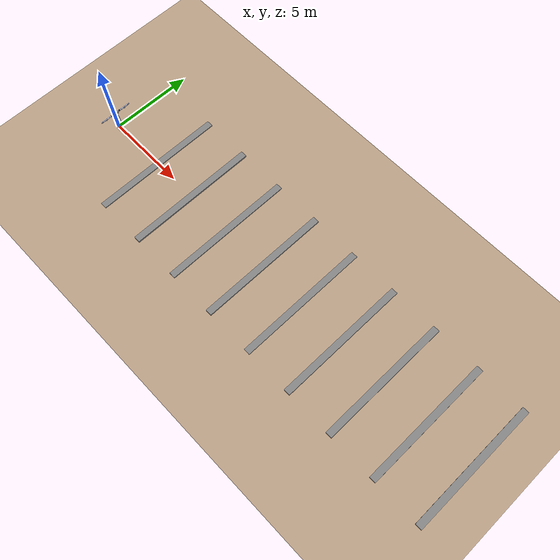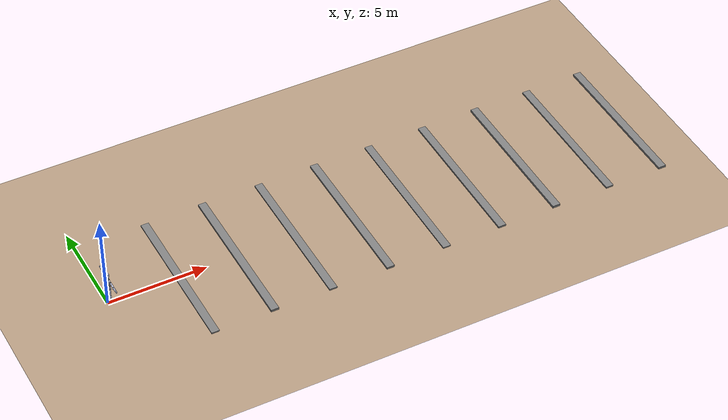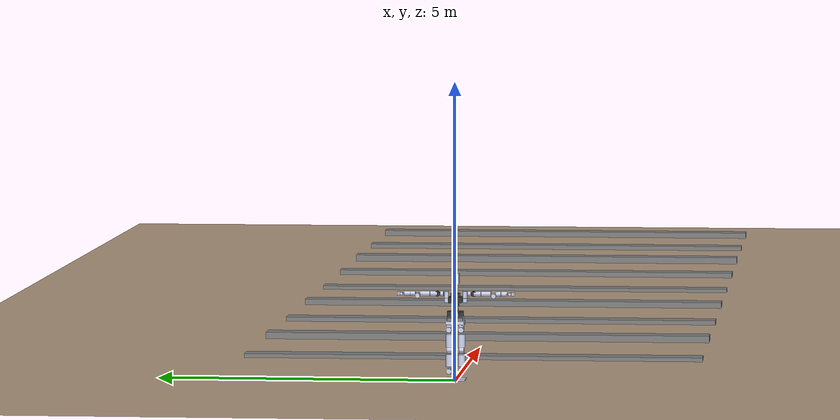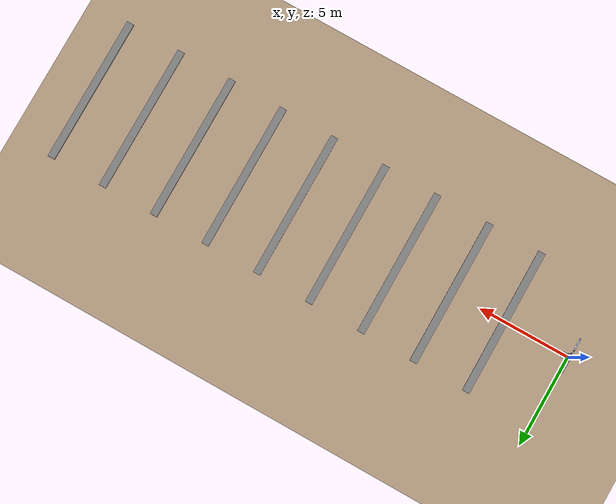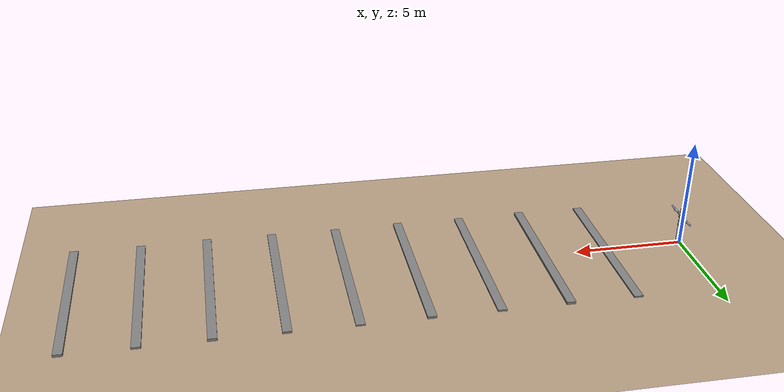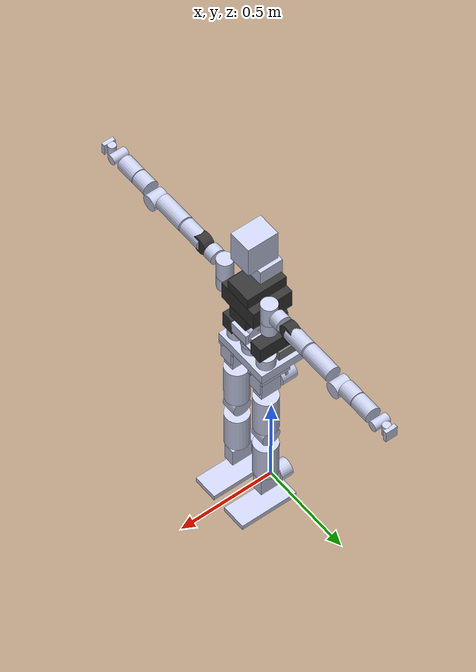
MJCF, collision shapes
<mujoco model="dyros_tocabi_description">

    <compiler angle="radian" meshdir="../meshes/dyros_tocabi/" balanceinertia="true"/>
    <default>
        <motor ctrllimited="true" ctrlrange="-300 300"/>
        <default class="viz">
            <geom contype="0" conaffinity="0" group="1" type="mesh" rgba=".6 .6 .7 1" />
        </default>
        <default class="cls">
            <geom group="2" rgba="0.79216 0.81961 0.93333 0.5"/>
        </default>
        <default class="cls_f">
            <geom group="2" rgba="0.79216 0.81961 0.93333 0.1" friction="1 0.005 0.0001"/>
        </default>
        <default class="FTsensor">
            <site type="cylinder" size="0.005 0.005" group="4" rgba=".1 .1 .9 1"/>
        </default>
        <default class="Leg">
            <joint damping="1" frictionloss="0.1"/>
        </default>
        <default class="Waist">
            <joint damping="1" frictionloss="0.1"/>
        </default>
        <default class="Upper">
            <joint damping="1" frictionloss="0.1"/>
        </default>
    </default>
    <option timestep='0.0005' iterations="50" tolerance="1e-10" solver="Newton" jacobian="dense" cone="elliptic" gravity="0 0 -9.81"/>

    <visual>
        <quality shadowsize="2048" offsamples="16"/>
        <map stiffness="10" znear="0.05"/>
    </visual>

    <asset>
        <mesh name="Pelvis_link" file="Pelvis_link2.STL" scale="0.001 0.001 0.001"/>
        <mesh name="HipRoll_R_link" file="HipRoll_R_link.STL" />
        <mesh name="HipCenter_R_Link" file="HipCenter_R_Link.STL" />
        <mesh name="Thigh_R_Link" file="Thigh_R_Link.STL" />
        <mesh name="Knee_R_Link" file="Knee_R_Link.STL" />
        <mesh name="AnkleCenter_R_Link" file="AnkleCenter_R_Link.STL" />
        <mesh name="AnkleRoll_R_Link" file="AnkleRoll_R_Link.STL" />
        <mesh name="HipRoll_L_Link" file="HipRoll_L_Link.STL" />
        <mesh name="HipCenter_L_Link" file="HipCenter_L_Link.STL" />
        <mesh name="Thigh_L_Link" file="Thigh_L_Link.STL" />
        <mesh name="Knee_L_Link" file="Knee_L_Link.STL" />
        <mesh name="AnkleCenter_L_Link" file="AnkleCenter_L_Link.STL" />
        <mesh name="AnkleRoll_L_Link" file="AnkleRoll_L_Link.STL" />
        <mesh name="waist1" file="waistyaw.STL" scale="0.001 0.001 0.001"/>
        <mesh name="waist2" file="waist2.STL" />
        <mesh name="upperbody" file="upperbody.STL" />
        <mesh name="R_shoulder1" file="R_shoulder1.STL" />
        <mesh name="R_shoulder2" file="R_shoulder2.STL" />
        <mesh name="R_shoulder3" file="R_shoulder3.STL" />
        <mesh name="R_arm" file="R_arm.STL" />
        <mesh name="R_elbow" file="R_elbow.STL" />
        <mesh name="R_forearm" file="R_forearm.STL" />
        <mesh name="R_wrist1" file="R_wrist1.STL" />
        <mesh name="L_shoulder1" file="L_shoulder1.STL" />
        <mesh name="L_shoulder2" file="L_shoulder2.STL" />
        <mesh name="L_shoulder3" file="L_shoulder3.STL" />
        <mesh name="L_arm" file="L_arm.STL" />
        <mesh name="L_elbow" file="L_elbow.STL" />
        <mesh name="L_forearm" file="L_forearm.STL" />
        <mesh name="L_wrist1" file="L_wrist1.STL" />
        <mesh name="neck" file="neck.STL" />
        <mesh name="head" file="head.STL" />
        <mesh name="hand" file="wrist2joint.STL" scale="0.001 0.001 0.001"/>
        <mesh name="Foot_Link" file="Foot_Link.STL"/>

        <!--texture type="skybox" builtin="gradient" width="128" height="128" rgb1="1 1 1" rgb2="0 0 0"/-->
        <texture type="skybox" builtin="gradient" width="128" height="128" rgb1="0.4 0.6 0.8" rgb2="0 0 0"/>
        <texture name="texgeom" type="cube" builtin="flat" mark="cross" width="128" height="128" rgb1="0.6 0.6 0.6" rgb2="0.6 0.6 0.6" markrgb="1 1 1"/>
        <texture name="texplane" type="2d" builtin="checker" rgb1=".4 .4 .4" rgb2=".6 .6 .6" width="512" height="512"/>
        <material name='geom' texture="texgeom" texuniform="true"/>
        <material name='MatPlane' reflectance='0.3' texture="texplane" texrepeat="1 1" texuniform="true"/>
        <material name='MatPlane2' reflectance='0.3' />
    </asset>

    <worldbody>
        <geom name="ground" type="plane" pos="0 0 0" size="30 30 .05" rgba="0.7 0.6 0.5 1" material="MatPlane2" group="3"/>
        <body name="obstacle1" pos="3.6 0.0 0.0" zaxis="0 0 1">
            <geom size="0.2 4.0 0.04" type="box" />
        </body>
        <body name="obstacle2" pos="6.6 0.0 0.0" zaxis="0 0 1">
            <geom size="0.2 4.0 0.09" type="box" />
        </body>
        <body name="obstacle3" pos="9.6 0.0 0.0" zaxis="0 0 1">
            <geom size="0.2 4.0 0.05" type="box" />
        </body>
        <body name="obstacle4" pos="12.6 0.0 0.0" zaxis="0 0 1">
            <geom size="0.2 4.0 0.08" type="box" />
        </body>
        <body name="obstacle5" pos="15.6 0.0 0.0" zaxis="0 0 1">
            <geom size="0.2 4.0 0.04" type="box" />
        </body>
        <body name="obstacle6" pos="18.6 0.0 0.0" zaxis="0 0 1">
            <geom size="0.2 4.0 0.07" type="box" />
        </body>
        <body name="obstacle7" pos="21.6 0.0 0.0" zaxis="0 0 1">
            <geom size="0.2 4.0 0.10" type="box" />
        </body>
        <body name="obstacle8" pos="24.6 0.0 0.0" zaxis="0 0 1">
            <geom size="0.2 4.0 0.06" type="box" />
        </body>
        <body name="obstacle9" pos="27.6 0.0 0.0" zaxis="0 0 1">
            <geom size="0.2 4.0 0.09" type="box" />
        </body>
        <light directional="true" diffuse=".8 .8 .8" pos="0 0 10" dir="0 0 -10"/>
        <light directional="true" diffuse=".5 .5 .5" pos="10 0 0" dir="-10 0 0"/>

        <body name="base_link" pos="0.0 0 0.96" euler="0 0 0">
            <joint name="virtual_joint" type="free" limited='false' frictionloss="0" damping="0" stiffness="0" armature="0"/>
            <inertial pos="0.07809 0 0.03985" mass="12.19525" fullinertia="0.101833182 0.072400662 0.144478157 -0.000070812 -0.003831096 0.000079272" />
            <geom class="viz" pos="0.11 0 0.02" rgba="0.20313 0.20313 0.20313 1" quat="0.5 0.5 0.5 0.5" mesh="Pelvis_link" />
            <geom size="0.045 0.044" pos="0.11 0 0.039" type="cylinder" class="cls" />
            <geom size="0.045 0.055" pos="0.11 0.1025 0.05" type="cylinder" class="cls" />
            <geom size="0.045 0.055" pos="0.11 -0.1025 0.05" type="cylinder" class="cls" />
            <geom size="0.12 0.1525 0.025" pos="0.052 0 0.02" type="box" class="cls" />
            <geom size="0.05 0.13 0.05" pos="0.01 0 0.05" type="box" group="1"/>
            <site name="Pelvis_IMU" type="cylinder" size="0.005 0.005" group="4" rgba=".1 .1 .9 1"/>
            <body name="L_HipRoll_Link" pos="0.11 0.1025 -0.1025">
                <inertial pos="-0.06477 0 0.05149" mass="2.679" fullinertia="0.01821 0.03121 0.2928 -1.676E-07 -0.0007745 -4.53E-09" />
                <joint name="L_HipYaw_Joint" pos="0 0 0" axis="0 0 1" limited="true" range="-3.14 3.14" class="Leg"/>
                <geom class="viz" rgba="0.20313 0.20313 0.20313 1" mesh="HipRoll_L_Link" />
                <geom size="0.045 0.04" pos="-0.1 0 0" quat="0.707107 0 0.707107 0" type="cylinder" class="cls"/>
                <geom size="0.077 0.05 0.01" pos="-0.016 0 0.085" type="box" class="cls"/>
                <geom size="0.006 0.036 0.0475" pos="0.055 0 0.0475" type="box" class="cls"/>
                <geom size="0.006 0.036 0.0475" pos="-0.087 0 0.0475" type="box" class="cls"/>
                <body name="L_HipCenter_Link" pos="0 0 0">
                    <inertial pos="-0.04801 0.0022 2e-05" mass="2.67" fullinertia="0.3553 0.009161 0.00876 1.725E-08 -3.236E-06 -4.778E-06" />
                    <joint name="L_HipRoll_Joint" pos="0 0 0" axis="1 0 0" limited="true" range="-3.14 3.14" class="Leg"/>
                    <geom class="viz" rgba="0.20313 0.20313 0.20313 1" mesh="HipCenter_L_Link" />
                    <geom size="0.05225 0.03 0.0475" pos="-0.0045 0 0" type="box" class="cls"/>
                    <body name="L_Thigh_Link" pos="0 0 0">
                        <inertial pos="-0.00042 0.00032 -0.18904" mass="5.366" fullinertia="0.2987 0.7088 0.00982 -4.284E-05 -0.000196 0.002406" />
                        <joint name="L_HipPitch_Joint" pos="0 0 0" axis="0 1 0" limited="true" range="-3.14 3.14" class="Leg"/>
                        <geom class="viz" rgba="0.85938 0.07813 0.23438 1" mesh="Thigh_L_Link" />
                        <geom class="cls" size="0.049 0.038815" pos="0 0 -0.35" quat="0.707107 0.707107 0 0" type="cylinder"/>
                        <geom class="cls" size="0.06 0.10875" pos="0 0 -0.1923" type="cylinder"/>
                        <geom class="viz" size="0.033 0.02 0.06875" pos="0 0 -0.1723" type="box" rgba="0.20313 0.20313 0.20313 1" />
                        <body name="L_Knee_Link" pos="0 0 -0.35">
                            <inertial pos="0.00429 -0.00214 -0.1428" mass="3.883" fullinertia="0.1506 0.5588 0.007451 -2.887E-05 -0.002607 -0.001486" />
                            <joint name="L_Knee_Joint" pos="0 0 0" axis="0 1 0" limited="true" range="-3.14 3.14" class="Leg"/>
                            <geom class="viz" rgba="0.85938 0.07813 0.23438 1" mesh="Knee_L_Link" />
                            <geom class="cls" size="0.06 0.1" pos="0 0 -0.175" type="cylinder"/>
                            <geom class="viz" size="0.028 0.02 0.06875" pos="0 0 -0.1603" type="box" rgba="0.20313 0.20313 0.20313 1" />
                            <body name="L_AnkleCenter_Link" pos="0 0 -0.35">
                                <inertial pos="-0.00419 0.0018 -0.0003" mass="2.51" fullinertia="0.002857 0.4135 0.003345 -1.422E-07 2.222E-06 4.611E-06" />
                                <joint name="L_AnklePitch_Joint" pos="0 0 0" axis="0 1 0" limited="true" range="-3.14 3.14" class="Leg"/>
                                <geom class="viz" rgba="0.20313 0.20313 0.20313 1" mesh="AnkleCenter_L_Link" />
                                <geom class="cls" size="0.05225 0.03 0.0475" pos="-0.0045 0 0" type="box" />
                                <body name="L_AnkleRoll_Link" pos="0 0 0">
                                    <inertial pos="-0.05196 0.00005 -0.0219" mass="1.26426" fullinertia="0.418697 0.006211405 0.008575514 1.5176E-08 -0.001095976 -5.435E-08" />
                                    <joint name="L_AnkleRoll_Joint" pos="0 0 0" axis="1 0 0" limited="true" range="-3.14 3.14" class="Leg"/>
                                    <geom class="viz" rgba="0.85938 0.07813 0.23438 1" mesh="AnkleRoll_L_Link" />
                                    <geom class="cls" size="0.045 0.03125" pos="-0.08875 0 0" quat="0.707107 0 -0.707107 0" type="cylinder"/>
                                    <body name="L_Foot_Link" pos="0 0 0">
                                        <inertial pos="-0.0162 8e-05 -0.1209" mass="2.326" fullinertia="0.003386409 0.012600125 0.014296 1.1237E-05 -0.000526477 -1.976E-06" />
                                        <geom class="viz" rgba="0.85938 0.07813 0.23438 1" mesh="Foot_Link" />
                                        <geom class="cls" size="0.15 0.065 0.0135" pos="0.03 0 -0.145" type="box"/>
                                        <geom class="cls" size="0.045 0.03125" pos="-0.08875 0 0" quat="0.707107 0 -0.707107 0" type="cylinder"/>
                                        <site class="FTsensor" name="LF_FT" pos="0 0 -0.09"/>
                                    </body>
                                </body>
                            </body>
                        </body>
                    </body>
                </body>
            </body>

            <body name="R_HipRoll_Link" pos="0.11 -0.1025 -0.1025">
                <inertial pos="-0.06477 0 0.05149" mass="2.679" fullinertia="0.01821 0.03121 0.2928 -1.676E-07 -0.0007745 -4.53E-09" />
                <joint name="R_HipYaw_Joint" pos="0 0 0" axis="0 0 1" limited="true" range="-3.14 3.14" class="Leg"/>
                <geom class="viz" rgba="0.20313 0.20313 0.20313 1" mesh="HipRoll_R_link" />
                <geom class="cls" size="0.045 0.04" pos="-0.1 0 0" quat="0.707107 0 0.707107 0" type="cylinder"/>
                <geom class="cls" size="0.077 0.05 0.01" pos="-0.016 0 0.085" type="box"/>
                <geom class="cls" size="0.006 0.036 0.0475" pos="0.055 0 0.0475" type="box"/>
                <geom class="cls" size="0.006 0.036 0.0475" pos="-0.087 0 0.0475" type="box"/>
                <body name="R_HipCenter_Link" pos="0 0 0">
                    <inertial pos="-0.04801 -0.0022 2e-05" mass="2.67" fullinertia="0.3553 0.009161 0.00876 1.725E-08 -3.236E-06 -4.778E-06" />
                    <joint name="R_HipRoll_Joint" pos="0 0 0" axis="1 0 0" limited="true" range="-3.14 3.14" class="Leg"/>
                    <geom class="viz" rgba="0.20313 0.20313 0.20313 1" mesh="HipCenter_R_Link" />
                    <geom class="cls" size="0.05225 0.03 0.0475" pos="-0.0045 0 0" type="box"/>
                    <body name="R_Thigh_Link" pos="0 0 0">
                        <inertial pos="-0.00042 -0.00032 -0.18904" mass="5.366" fullinertia="0.2987 0.7088 0.00982 -4.284E-05 -0.000196 0.002406" />
                        <joint name="R_HipPitch_Joint" pos="0 0 0" axis="0 1 0" limited="true" range="-3.14 3.14" class="Leg"/>
                        <geom class="viz" rgba="0.85938 0.07813 0.23438 1" mesh="Thigh_R_Link" />
                        <geom class="cls" size="0.049 0.038815" pos="0 0 -0.35" quat="0.707107 0.707107 0 0" type="cylinder"/>
                        <geom class="cls" size="0.06 0.10875" pos="0 0 -0.1923" type="cylinder"/>
                        <geom class="viz" size="0.033 0.02 0.06875" pos="0 0 -0.1723" type="box" rgba="0.20313 0.20313 0.20313 1" />
                        <body name="R_Knee_Link" pos="0 0 -0.35">
                            <inertial pos="0.00429 0.00214 -0.1428" mass="3.883" fullinertia="0.1506 0.5588 0.007451 -2.887E-05 -0.002607 -0.001486" />
                            <joint name="R_Knee_Joint" pos="0 0 0" axis="0 1 0" limited="true" range="-3.14 3.14" class="Leg"/>
                            <geom class="viz" rgba="0.85938 0.07813 0.23438 1" mesh="Knee_R_Link" />
                            <geom class="cls" size="0.06 0.1" pos="0 0 -0.175" type="cylinder"/>
                            <geom class="viz" size="0.028 0.02 0.06875" pos="0 0 -0.1603" type="box" rgba="0.20313 0.20313 0.20313 1" />
                            <body name="R_AnkleCenter_Link" pos="0 0 -0.35">
                                <inertial pos="-0.00419 -0.0018 -0.0003" mass="2.51" fullinertia="0.002857 0.4135 0.003345 -1.422E-07 2.222E-06 4.611E-06" />
                                <joint name="R_AnklePitch_Joint" pos="0 0 0" axis="0 1 0" limited="true" range="-3.14 3.14" class="Leg"/>
                                <geom class="viz" rgba="0.20313 0.20313 0.20313 1" mesh="AnkleCenter_R_Link" />
                                <geom class="cls" size="0.05225 0.03 0.0475" pos="-0.0045 0 0" type="box"/>
                                <body name="R_AnkleRoll_Link" pos="0 0 0">
                                    <inertial pos="-0.05196 0.00005 -0.0219" mass="1.26426" fullinertia="0.418697 0.006211405 0.008575514 1.5176E-08 -0.001095976 -5.435E-08" />
                                    <joint name="R_AnkleRoll_Joint" pos="0 0 0" axis="1 0 0" limited="true" range="-3.14 3.14" class="Leg"/>
                                    <geom class="viz" rgba="0.85938 0.07813 0.23438 1" mesh="AnkleRoll_R_Link" />
                                    <geom class="cls" size="0.045 0.03125" pos="-0.08875 0 0" quat="0.707107 0 -0.707107 0" type="cylinder"/>
                                    <body name="R_Foot_Link" pos="0 0 0">
                                        <inertial pos="-0.0162 8e-05 -0.1209" mass="2.326" fullinertia="0.003386409 0.012600125 0.014296 1.1237E-05 -0.000526477 -1.976E-06" />
                                        <geom class="viz" rgba="0.85938 0.07813 0.23438 1" mesh="Foot_Link" />
                                        <geom class="cls" size="0.15 0.065 0.0135" pos="0.03 0 -0.145" type="box"/>
                                        <geom class="cls" size="0.045 0.03125" pos="-0.08875 0 0" quat="0.707107 0 -0.707107 0" type="cylinder" />
                                        <site class="FTsensor" name="RF_FT" pos="0 0 -0.09"/>
                                    </body>
                                </body>
                            </body>
                        </body>
                    </body>
                </body>
            </body>

            <body name="Waist1_Link" pos="0.11 0 0.1979">
                <inertial pos="0 0 -0.03647" mass="0.89722" fullinertia="0.003744227 0.002030963 1.007723743 -0.000023489 0.000037149 -0.000424890" />
                <joint name="Waist1_Joint" pos="0 0 0" axis="0 0 1" limited="true" range="-2.094 2.094" class="Waist"/>
                <geom class="viz" rgba="0.85938 0.07813 0.23438 1" pos="0 0 -0.085" quat="0 0.707107 0 0.707107" mesh="waist1" />
                <geom class="cls" size="0.05 0.01" pos="0 0 -0.096" type="cylinder"/>
                <geom class="cls" size="0.047 0.065 0.005" pos="0 0 -0.081" type="box"/>
                <geom class="cls" size="0.047 0.005 0.0455" pos="0 0.06 -0.0405" type="box"/>
                <geom class="cls" size="0.047 0.005 0.0455" pos="0 -0.06 -0.0405" type="box"/>

                <geom class="viz" size="0.095 0.032 0.0435" pos="-0.04 -0.099 -0.038" rgba="0.20313 0.20313 0.20313 1" type="box"/>
                <geom class="viz" size="0.095 0.032 0.0435" pos="-0.04 0.099 -0.038" rgba="0.20313 0.20313 0.20313 1" type="box"/>

                <body name="Waist2_Link" pos="0 0 0">
                    <inertial pos="-0.00029 0 0" mass="3.752" fullinertia="0.006020606 1.011708561 0.007561688 0.000011504 -0.000000053 0.000001147" />
                    <joint name="Waist2_Joint" pos="0 0 0" axis="0 1 0" limited="true" range="-2.094 2.094" class="Waist"/>
                    <geom class="viz" rgba="0.20313 0.20313 0.20313 1" mesh="waist2" />
                    <geom class="cls" size="0.055 0.05" quat="0.707107 0.707107 0 0" type="cylinder"/>
                    <geom class="cls" size="0.05 0.05 0.03" pos="0.02 0 0" type="box"/>
                    <geom class="cls" size="0.045 0.05 0.0455" pos="-0.02 0 0" type="box"/>
                    <body name="Upperbody_Link" pos="0 0 0">
                        <inertial pos="-0.04294 0 0.16798" quat="0.999909 -0.000268355 -0.0135223 5.11667e-05" mass="18.1338" diaginertia="0.563198 0.563198 0.563198" />
                        <joint name="Upperbody_Joint" pos="0 0 0" axis="-1 0 0" limited="true" range="-2.094 2.094" class="Waist"/>
                        <geom class="viz" rgba="0.85938 0.07813 0.23438 1" mesh="upperbody" />
                        <geom class="viz" size="0.105 0.11 0.05" pos="-0.03 0 0.2" type="box" rgba="0.20313 0.20313 0.20313 1" />
                        <geom class="viz" size="0.105 0.055 0.035" pos="-0.03 0 0.115" type="box" rgba="0.20313 0.20313 0.20313 1" />
                        <geom class="viz" size="0.105 0.07 0.03" pos="-0.03 0 0.28" type="box" rgba="0.20313 0.20313 0.20313 1" />
                        <geom class="cls" size="0.105 0.11 0.05" pos="-0.03 0 0.2" type="box" />
                        <geom class="cls" size="0.105 0.055 0.035" pos="-0.03 0 0.115" type="box"/>
                        <geom class="cls" size="0.105 0.07 0.03" pos="-0.03 0 0.28" type="box"/>
                        <geom class="cls" size="0.06 0.035 0.07" pos="-0.08 0 0.32" type="box"/>
                        <geom class="viz" size="0.054 0.045" pos="-0.115 0 0" quat="0.707107 0 0.707107 0" type="cylinder" rgba="0.20313 0.20313 0.20313 1" />
                        <geom class="cls" size="0.04 0.035" pos="0.023 0.154 0.185" type="cylinder"/>
                        <geom class="cls" size="0.04 0.035" pos="0.023 -0.154 0.185" type="cylinder"/>
                        <body name="Neck_Link" pos="-0.036 0 0.3795">
                            <inertial pos="0 0 -0.0023" mass="0.248" fullinertia="0.000058259 0.000036489 0.000058237 -0.000000076 0.000000268 -0.000001002" />
                            <joint name="Neck_Joint" pos="0 0 0" axis="0 0 1" limited="true" range="-1.54 1.54" class="Upper"/>
                            <geom class="viz" rgba="0.20313 0.20313 0.20313 1" mesh="neck" />
                            <body name="Head_Link" pos="0 0 0.0275">
                                <inertial pos="-0.0036 0 0.1289" mass="0.006332" fullinertia="0.020045929 0.021593879 0.014854138 -0.000020568 -0.001338538 0.000156360" />
                                <joint name="Head_Joint" pos="0 0 0" axis="0 1 0" limited="true" range="-1.54 1.54" class="Upper"/>
                                <geom class="viz" rgba="0.85938 0.07813 0.23438 1" mesh="head" />
                                <geom class="cls" size="0.08 0.06 0.086" pos="0.02 0 0.14" type="box" />
                            </body>
                        </body>

                        <body name="L_Shoulder1_Link" pos="0.023 0.154 0.2275">
                            <inertial pos="-3e-05 0.00397 0.06029" mass="1.6762" fullinertia="0.001925606 0.001936576 0.185330098 0.000001433 0.000002313 0.000078962" />
                            <joint name="L_Shoulder1_Joint" pos="0 0 0" axis="0 0 1" limited="true" range="-2.09 1.54" class="Upper"/>
                            <geom class="viz" rgba="0.85938 0.07813 0.23438 1" mesh="L_shoulder1" />
                            <geom class="cls" size="0.04 0.055" pos="0 0 0.05" type="cylinder"/>
                            <body name="L_Shoulder2_Link" pos="0 0.0341 0.065">
                                <inertial pos="0.00107 0.0491 -1e-05" mass="0.4016" fullinertia="0.000989903 0.184275853 0.001067575 0.000028237 -0.000000465 0.000000133" />
                                <joint name="L_Shoulder2_Joint" pos="0 0 0" axis="0 1 0" limited="true" range="-3.14159 3.14159" class="Upper"/>
                                <geom class="viz" rgba="0.20313 0.20313 0.20313 1" mesh="L_shoulder2" />
                                <geom class="cls" size="0.04 0.025" pos="0 0.04 0" quat="0.707107 0.707107 0 0" type="cylinder"/>
                                <body name="L_Shoulder3_Link" pos="0 0.115 0">
                                    <inertial pos="0.00262 0.04826 0.00023" mass="2.90141" fullinertia="0.192093159 0.002493784 0.008296854 -0.000365084 -0.000002746 -0.000023821" />
                                    <joint name="L_Shoulder3_Joint" pos="0 0 0" axis="-1 0 0" limited="true" range="-1.9199 1.9199" class="Upper"/>
                                    <geom class="viz" rgba="0.20313 0.20313 0.20313 1" mesh="L_shoulder3" />
                                    <geom class="cls" size="0.04 0.06" pos="0 0.06 0" quat="0.707107 0.707107 0 0" type="cylinder"/>
                                    <geom size="0.045 0.027" pos="0 0 0" quat="0.707107 0 0.707107 0" rgba="0.20313 0.20313 0.20313 1" type="cylinder" class="viz"/>
                                    <body name="L_Armlink_Link" pos="0 0.1281 0">
                                        <inertial pos="-0.01896 0.11642 -0.0119" mass="0.58517" fullinertia="0.002878609 0.184381923 0.003117058 0.000302586 -0.000036001 0.000398377" />
                                        <joint name="L_Armlink_Joint" pos="0 0 0" axis="0 1 0" limited="true" range="-3.14159 3.14159" class="Upper"/>
                                        <geom class="viz" rgba="0.85938 0.07813 0.23438 1" mesh="L_arm" />
                                        <geom class="cls" size="0.04 0.08" pos="0 0.08 0" quat="0.707107 0.707107 0 0" type="cylinder"/>
                                        <body name="L_Elbow_Link" pos="0 0.207 -0.0325">
                                            <inertial pos="-0.00136 0.05256 0.01764" mass="2.06511" fullinertia="0.055865466 0.001895543 0.005958821 0.000151764 0.000055158 0.001530917" />
                                            <joint name="L_Elbow_Joint" pos="0 0 0" axis="1 0 0" limited="true" range="-3.14159 2.8" class="Upper"/>
                                            <geom class="viz" rgba="0.20313 0.20313 0.20313 1" mesh="L_elbow" />
                                            <geom class="cls" size="0.04 0.04" pos="0 0.08 0.0325" quat="0.707107 0.707107 0 0" type="cylinder"/>
                                            <geom class="cls" size="0.04 0.04" quat="0.707107 0 0.707107 0" type="cylinder"/>
                                            <geom size="0.034 0.025" pos="0.003 0 0" quat="0.707107 0 0.707107 0" rgba="0.20313 0.20313 0.20313 1" type="cylinder" class="viz"/>
                                            <body name="L_Forearm_Link" pos="0 0.1244 0.0325">
                                                <inertial pos="-0.01426 0.0767 0.00033" mass="0.35234" fullinertia="0.001053636 0.049889479 0.001266418 0.000084568 0.000022117 0.000019539" />
                                                <joint name="L_Forearm_Joint" pos="0 0 0" axis="0 1 0" limited="true" range="-3.14159 3.14159" class="Upper"/>
                                                <geom class="viz" rgba="0.85938 0.07813 0.23438 1" mesh="L_forearm" />
                                                <geom class="cls" size="0.04 0.05" pos="0 0.05 0" quat="0.707107 0.707107 0 0" type="cylinder"/>
                                                <geom class="cls" size="0.025 0.04" pos="0 0.1451 0" quat="0.707107 0 0.707107 0" type="cylinder"/>
                                                <body name="L_Wrist1_Link" pos="0 0.1451 0">
                                                    <inertial pos="-0.00158 0.02153 3e-05" mass="0.70923" fullinertia="0.015205197 0.000396376 0.000683187 0.000024218 -0.000000263 0.000000688" />
                                                    <joint name="L_Wrist1_Joint" pos="0 0 0" axis="1 0 0" limited="true" range="-3.14159 3.14159" class="Upper"/>
                                                    <geom class="viz" rgba="0.20313 0.20313 0.20313 1" mesh="L_wrist1" />
                                                    <geom size="0.02 0.03" pos="0 0.046 0" type="cylinder" class="cls" />
                                                    <body name="L_Wrist2_Link" pos="0 0.046 0" quat="0 0 -0.707107 0.707107">
                                                        <inertial pos="0.00063 0.0636 0.00178" mass="0.1" fullinertia="0.000865450 0.000696917 0.015377823 0 0 0" />
                                                        <joint name="L_Wrist2_Joint" pos="0 0 0" axis="0 1 0" limited="true" range="-2.094 2.094" class="Upper"/>
                                                        <geom size="0.03 0.03 0.01" pos="0 0 -0.025" type="box" class="cls"/>
                                                        <geom size="0.03 0.03 0.01" pos="0 0 -0.025" type="box" class="viz" rgba="0.20313 0.20313 0.20313 1" />
                                                        <site class="FTsensor" name="LH_FT" pos="0 0 -0.035"/>
                                                    </body>
                                                </body>
                                            </body>
                                        </body>
                                    </body>
                                </body>
                            </body>
                        </body>
                        <body name="R_Shoulder1_Link" pos="0.023 -0.154 0.2275">
                            <inertial pos="-3e-05 -0.00397 0.06029" mass="1.6762" fullinertia="0.001925606 0.001936576 0.185330098 -0.000001433 0.000002313 -0.000078962" />
                            <joint name="R_Shoulder1_Joint" pos="0 0 0" axis="0 0 1" limited="true" range="-1.54 2.09" class="Upper"/>
                            <geom class="viz" rgba="0.85938 0.07813 0.23438 1" mesh="R_shoulder1" />
                            <geom size="0.04 0.055" pos="0 0 0.05" type="cylinder" class="cls" />
                            <body name="R_Shoulder2_Link" pos="0 -0.0341 0.065">
                                <inertial pos="0.00107 -0.0491 -1e-05" mass="0.4016" fullinertia="0.000989903 0.184275853 0.001067575 -0.000028237 -0.000000465 -0.000000133" />
                                <joint name="R_Shoulder2_Joint" pos="0 0 0" axis="0 -1 0" limited="true" range="-3.14159 3.14159" class="Upper"/>
                                <geom class="viz" rgba="0.20313 0.20313 0.20313 1" mesh="R_shoulder2" />
                                <geom size="0.04 0.025" pos="0 -0.04 0" quat="0.707107 0.707107 0 0" type="cylinder" class="cls" />
                                <body name="R_Shoulder3_Link" pos="0 -0.115 0">
                                    <inertial pos="0.00262 -0.04826 0.00023" mass="2.90141" fullinertia="0.192093159 0.002493784 0.008296854 0.000365084 -0.000002746 0.000023821" />
                                    <joint name="R_Shoulder3_Joint" pos="0 0 0" axis="-1 0 0" limited="true" range="-1.9199 1.9199" class="Upper"/>
                                    <geom class="viz" rgba="0.20313 0.20313 0.20313 1" mesh="R_shoulder3" />
                                    <geom size="0.04 0.06" pos="0 -0.06 0" quat="0.707107 0.707107 0 0" type="cylinder" class="cls" />

                                    <geom size="0.045 0.027" pos="0 0 0" quat="0.707107 0 0.707107 0" rgba="0.20313 0.20313 0.20313 1" type="cylinder" class="viz"/>
                                    <body name="R_Armlink_Link" pos="0 -0.1281 0">
                                        <inertial pos="-0.01896 -0.11642 -0.0119" mass="0.58517" fullinertia="0.002878609 0.184381923 0.003117058 -0.000302586 -0.000036001 -0.000398377" />
                                        <joint name="R_Armlink_Joint" pos="0 0 0" axis="0 -1 0" limited="true" range="-3.14159 3.14159" class="Upper"/>
                                        <geom class="viz" rgba="0.85938 0.07813 0.23438 1" mesh="R_arm" />
                                        <geom size="0.04 0.08" pos="0 -0.08 0" quat="0.707107 0.707107 0 0" type="cylinder" class="cls" />
                                        <body name="R_Elbow_Link" pos="0 -0.207 -0.0325">
                                            <inertial pos="-0.00136 -0.05256 0.01764" mass="2.06511" fullinertia="0.055865466 0.001895543 0.005958821 -0.000151764 0.000055158 -0.001530917" />
                                            <joint name="R_Elbow_Joint" pos="0 0 0" axis="1 0 0" limited="true" range="-2.967 3.14159" class="Upper"/>
                                            <geom class="viz" rgba="0.20313 0.20313 0.20313 1" mesh="R_elbow" />
                                            <geom size="0.04 0.04" pos="0 -0.08 0.0325" quat="0.707107 0.707107 0 0" type="cylinder" class="cls" />
                                            <geom size="0.04 0.04" quat="0.707107 0 0.707107 0" type="cylinder" class="cls" />
                                            <geom size="0.034 0.025" pos="0.003 0 0" quat="0.707107 0 0.707107 0" rgba="0.20313 0.20313 0.20313 1" type="cylinder" class="viz"/>
                                            <body name="R_Forearm_Link" pos="0 -0.1244 0.0325">
                                                <inertial pos="-0.01426 -0.0767 0.00033" mass="0.35234" fullinertia="0.001053636 0.049889479 0.001266418 -0.000084568 0.000022117 -0.000019539" />
                                                <joint name="R_Forearm_Joint" pos="0 0 0" axis="0 -1 0" limited="true" range="-3.14159 3.14159" class="Upper"/>
                                                <geom class="viz" rgba="0.85938 0.07813 0.23438 1" mesh="R_forearm" />
                                                <geom size="0.04 0.05" pos="0 -0.05 0" quat="0.707107 0.707107 0 0" type="cylinder" class="cls" />
                                                <geom size="0.025 0.04" pos="0 -0.1451 0" quat="0.707107 0 0.707107 0" type="cylinder" class="cls" />
                                                <body name="R_Wrist1_Link" pos="0 -0.1451 0">
                                                    <inertial pos="-0.00158 -0.02153 3e-05" mass="0.70923" fullinertia="0.015205197 0.000396376 0.000683187 -0.000024218 -0.000000263 -0.000000688" />
                                                    <joint name="R_Wrist1_Joint" pos="0 0 0" axis="1 0 0" limited="true" range="-3.14159 3.14159" class="Upper"/>
                                                    <geom class="viz" rgba="0.20313 0.20313 0.20313 1" mesh="R_wrist1" />
                                                    <geom size="0.02 0.03" pos="0 -0.046 0" type="cylinder" class="cls" />
                                                    <body name="R_Wrist2_Link" pos="0 -0.046 0" quat="0 0 0.707107 0.707107">
                                                        <inertial pos="0.00063 -0.0636 0.00178" quat="0.5 0.5 -0.5 0.5" mass="0.1" fullinertia="0.000865450 0.000696917 0.015377823 0 0 0" />
                                                        <joint name="R_Wrist2_Joint" pos="0 0 0" axis="0 -1 0" limited="true" range="-2.094 2.094" class="Upper"/>
                                                        <geom size="0.03 0.03 0.01" pos="0 0 -0.025" type="box" class="cls" />
                                                        <geom size="0.03 0.03 0.01" pos="0 0 -0.025" type="box" class="viz" rgba="0.20313 0.20313 0.20313 1" />
                                                        <site class="FTsensor" name="RH_FT" pos="0 0 -0.035"/>
                                                    </body>
                                                </body>
                                            </body>
                                        </body>
                                    </body>
                                </body>
                            </body>
                        </body>
                    </body>
                </body>
            </body>
        </body>

    </worldbody>
    <actuator>
        <motor name="L_HipYaw_Motor" joint="L_HipYaw_Joint"/>
        <motor name="L_HipRoll_Motor" joint="L_HipRoll_Joint"/>
        <motor name="L_HipPitch_Motor" joint="L_HipPitch_Joint"/>
        <motor name="L_Knee_Motor" joint="L_Knee_Joint"/>
        <motor name="L_AnklePitch_Motor" joint="L_AnklePitch_Joint"/>
        <motor name="L_AnkleRoll_Motor" joint="L_AnkleRoll_Joint"/>

        <motor name="R_HipYaw_Motor" joint="R_HipYaw_Joint"/>
        <motor name="R_HipRoll_Motor" joint="R_HipRoll_Joint"/>
        <motor name="R_HipPitch_Motor" joint="R_HipPitch_Joint"/>
        <motor name="R_Knee_Motor" joint="R_Knee_Joint"/>
        <motor name="R_AnklePitch_Motor" joint="R_AnklePitch_Joint"/>
        <motor name="R_AnkleRoll_Motor" joint="R_AnkleRoll_Joint"/>

        <motor name="Waist1_Motor" joint="Waist1_Joint"/>
        <motor name="Waist2_Motor" joint="Waist2_Joint"/>
        <motor name="Upperbody_Motor" joint="Upperbody_Joint"/>

        <motor name="Neck_Motor" joint="Neck_Joint"/>
        <motor name="Head_Motor" joint="Head_Joint"/>

        <motor name="L_Shoulder1_Motor" joint="L_Shoulder1_Joint"/>
        <motor name="L_Shoulder2_Motor" joint="L_Shoulder2_Joint"/>
        <motor name="L_Shoulder3_Motor" joint="L_Shoulder3_Joint"/>
        <motor name="L_Armlink_Motor" joint="L_Armlink_Joint"/>
        <motor name="L_Elbow_Motor" joint="L_Elbow_Joint"/>
        <motor name="L_Forearm_Motor" joint="L_Forearm_Joint"/>
        <motor name="L_Wrist1_Motor" joint="L_Wrist1_Joint"/>
        <motor name="L_Wrist2_Motor" joint="L_Wrist2_Joint"/>

        <motor name="R_Shoulder1_Motor" joint="R_Shoulder1_Joint"/>
        <motor name="R_Shoulder2_Motor" joint="R_Shoulder2_Joint"/>
        <motor name="R_Shoulder3_Motor" joint="R_Shoulder3_Joint"/>
        <motor name="R_Armlink_Motor" joint="R_Armlink_Joint"/>
        <motor name="R_Elbow_Motor" joint="R_Elbow_Joint"/>
        <motor name="R_Forearm_Motor" joint="R_Forearm_Joint"/>
        <motor name="R_Wrist1_Motor" joint="R_Wrist1_Joint"/>
        <motor name="R_Wrist2_Motor" joint="R_Wrist2_Joint"/>
    </actuator>

    <sensor>
        <force name="LF_Force_sensor" site="LF_FT"/>
        <torque name="LF_Torque_sensor" site="LF_FT"/>
        <force name="RF_Force_sensor" site="RF_FT"/>
        <torque name="RF_Torque_sensor" site="RF_FT"/>

        <force name="LH_Force_sensor" site="LH_FT"/>
        <torque name="LH_Torque_sensor" site="LH_FT"/>
        <force name="RH_Force_sensor" site="RH_FT"/>
        <torque name="RH_Torque_sensor" site="RH_FT"/>

        <accelerometer name="Acc_Pelvis_IMU" site="Pelvis_IMU"/>
        <gyro name="Gyro_Pelvis_IMU" site="Pelvis_IMU"/>
        <magnetometer name="Magnet_Pelvis_IMU" site="Pelvis_IMU"/>

        <framequat name="Pelvis_quat" objtype="site" objname="Pelvis_IMU"/>
        <framelinvel name="Pelvis_linear_vel" objtype="site" objname="Pelvis_IMU"/>
        <frameangvel name="Pelvis_angular_vel" objtype="site" objname="Pelvis_IMU"/>
    </sensor>

</mujoco>
